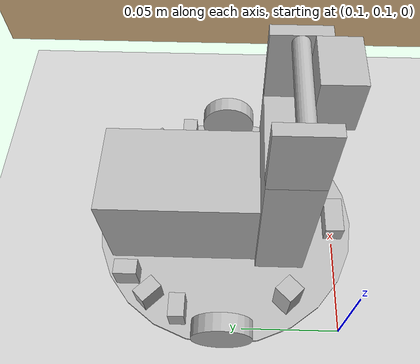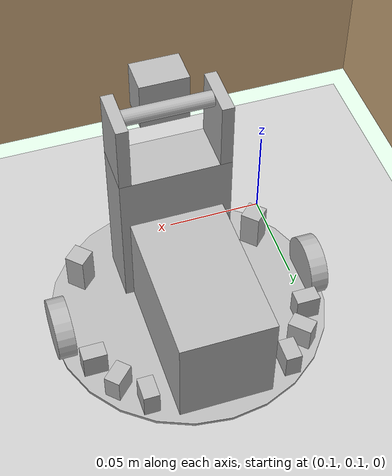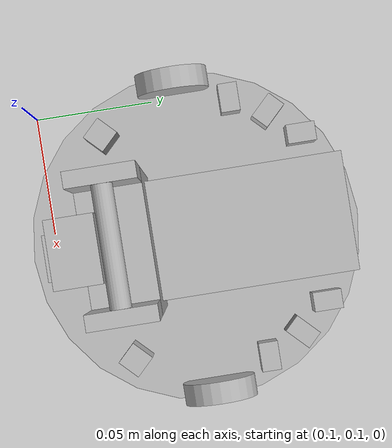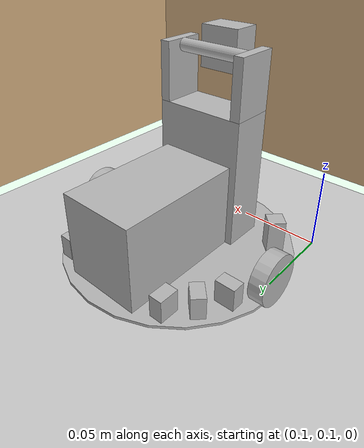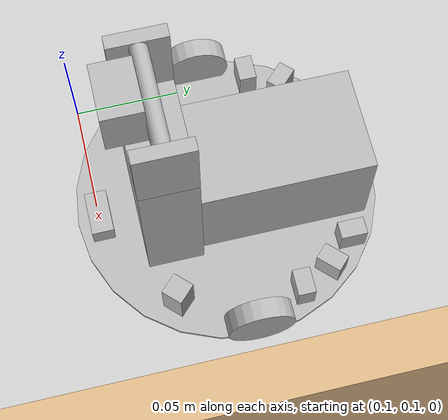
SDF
<?xml version="1.0" ?>
<sdf version="1.4">
  <world name="default">
    <scene>
      <ambient>0.5 0.5 0.5 1.0</ambient>
      <shadows>0</shadows>
    </scene>
    <include>
      <uri>model://ground_plane</uri>
    </include>
    <include>
      <uri>model://sun</uri>
    </include>
    <include>
      <uri>model://iti0201_robot</uri>
      <name>iti0201_robot</name>
      <pose>0.16 0.16 0 0 0 -1.57</pose> <!-- this is the robot's starting position, if you know where it should be, you can change this -->
    </include>

    <include>
      <uri>model://labyrinth5</uri>
      <name>labyrinth5</name>
      <pose>0 0 0 0 0 0</pose>
    </include>

  </world>
</sdf>

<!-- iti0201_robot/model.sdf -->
<sdf version='1.4'>
  	<model name="iti0201_robot">
  		<static>false</static>

      <!-- LINK 1: Chassis, connect wheels and base to this. -->
      <link name="chassis">
        <pose>0 0 0.0152 0 0 0</pose>
      </link>

      <joint type="fixed" name="chassis_to_base">
        <pose>0 0 0 0 0 0</pose>
        <child>base</child>
        <parent>chassis</parent>
        <axis>
          <xyz>0 0 0</xyz>
        </axis>
      </joint>

      <!-- LINK 2: Base, contains caster wheels, base, brainbox and base for camera stand. -->
  		<link name='base'>
        <pose>0 0 .006 0 0 0</pose>

          <inertial>
            <mass>50</mass>
          </inertial>

          <collision name='base_collision'>
            <geometry>
              <cylinder>
                <radius>.069912</radius>
                <length>0.001591</length>
              </cylinder>
            </geometry>
          </collision>

          <visual name='base_visual'>
            <geometry>
              <cylinder>
                <radius>.069912</radius>
                <length>0.001591</length>
              </cylinder>
            </geometry>
          </visual>

          <collision name="brainbox_collision">
            <pose>-0.022 0 0.02641535 0 0 0</pose>
            <geometry>
              <box>
                <size>.077304 .0468221 .0512397</size>
              </box>
            </geometry>
          </collision>

          <visual name="brainbox_visual">
            <pose>-0.022 0 0.02641535 0 0 0</pose>
            <geometry>
              <box>
                <size>.077304 .0468221 .0512397</size>
              </box>
            </geometry>
          </visual>

          <collision name="camera_stand_collision">
            <pose>0.02940475 0 0.0402758 0 0 0</pose>
            <geometry>
              <box>
                <size>.0255021 .0553499 .0789606</size>
              </box>
            </geometry>
          </collision>

          <visual name="camera_stand_visual">
            <pose>0.02940475 0 0.0402758 0 0 0</pose>
            <geometry>
              <box>
                <size>.0255021 .0553499 .0789606</size>
              </box>
            </geometry>
          </visual>

          <collision name="camera_stand_right_wall_collision">
          <pose>0.02940475 -0.02467495 0.0970561 0 0 0</pose>
            <geometry>
              <box>
                <size>.0255021 .006 .0346</size>
              </box>
            </geometry>
          </collision>

          <visual name="camera_stand_right_wall_visual">
          <pose>0.02940475 -0.02467495 0.0970561 0 0 0</pose>
            <geometry>
              <box>
                <size>.0255021 .006 .0346</size>
              </box>
            </geometry>
          </visual>

          <collision name="camera_stand_left_wall_collision">
          <pose>0.02940475 0.02467495 0.0970561 0 0 0</pose>
            <geometry>
              <box>
                <size>.0255021 .006 .0346</size>
              </box>
            </geometry>
          </collision>

          <visual name="camera_stand_left_wall_visual">
          <pose>0.02940475 0.02467495 0.0970561 0 0 0</pose>
            <geometry>
              <box>
                <size>.0255021 .006 .0346</size>
              </box>
            </geometry>
          </visual>

          <collision name='front_caster_collision'>
            <pose>0.035 0 -0.001 0 0 0</pose>
            <geometry>
                <sphere>
                <radius>.004648</radius>
              </sphere>
            </geometry>

            <surface>
              <friction>
                <ode>
                  <mu>0</mu>
                  <mu2>0</mu2>
                  <slip1>1.0</slip1>
                  <slip2>1.0</slip2>
                </ode>
              </friction>
            </surface>
          </collision>

          <visual name='front_caster_visual'>
            <pose>0.035 0 -0.001 0 0 0</pose>
            <geometry>
              <sphere>
                <radius>.004648</radius>
              </sphere>
            </geometry>
          </visual>

          <collision name='rear_caster_collision'>
            <pose>-0.035 0 -0.001 0 0 0</pose>
            <geometry>
                <sphere>
                <radius>.004648</radius>
              </sphere>
            </geometry>

            <surface>
              <friction>
                <ode>
                  <mu>0</mu>
                  <mu2>0</mu2>
                  <slip1>1.0</slip1>
                  <slip2>1.0</slip2>
                </ode>
              </friction>
            </surface>
          </collision>

          <visual name='rear_caster_visual'>
            <pose>-0.035 0 -0.001 0 0 0</pose>
            <geometry>
              <sphere>
                <radius>.004648</radius>
              </sphere>
            </geometry>
          </visual>
      </link>

      <!-- LINKS 3-11: Infrared sensors. -->
      <link name="front_right_45deg_ir">
        <pose>0.0326151 -0.0470558 0.0167955 0 0 0.78535</pose>
        <collision name="collision">
          <geometry>
            <box>
              <size>.01 .01 .02</size>
            </box>
          </geometry>
        </collision>
        <visual name="visual">
          <geometry>
            <box>
              <size>.01 .01 .02</size>
            </box>
          </geometry>
        </visual>
      </link>

      <joint type="fixed" name="front_right_45deg_ir_to_base">
        <pose>0 0 0 0 0 0</pose>
        <child>front_right_45deg_ir</child>
        <parent>base</parent>
      </joint>

      <link name="front_middle_ir">
        <pose>0.059312 0 0.0117955 0 0 0</pose>
        <collision name="collision">
          <geometry>
            <box>
              <size>.01 .02 .01</size>
            </box>
          </geometry>
        </collision>
        <visual name="visual">
          <geometry>
            <box>
              <size>.01 .02 .01</size>
            </box>
          </geometry>
        </visual>
      </link>

      <joint type="fixed" name="front_middle_ir_to_base">
        <pose>0 0 0 0 0 0</pose>
        <child>front_middle_ir</child>
        <parent>base</parent>
      </joint>

      <link name="front_left_45deg_ir">
        <pose>0.0326151 0.0470558 0.0167955 0 0 0.78535</pose>
        <collision name="collision">
          <geometry>
            <box>
              <size>.01 .01 .02</size>
            </box>
          </geometry>
        </collision>
        <visual name="visual">
          <geometry>
            <box>
              <size>.01 .01 .02</size>
            </box>
          </geometry>
        </visual>
      </link>

      <joint type="fixed" name="front_left_45deg_ir_to_base">
        <pose>0 0 0 0 0 0</pose>
        <child>front_left_45deg_ir</child>
        <parent>base</parent>
      </joint>

      <link name="rear_right_90deg_ir">
        <pose>-0.0225688 -0.054749 0.014341 0 0 0</pose>
        <collision name="collision">
          <geometry>
            <box>
              <size>.008 .012 .0135</size>
            </box>
          </geometry>
        </collision>
        <visual name="visual">
          <geometry>
            <box>
              <size>.008 .012 .0135</size>
            </box>
          </geometry>
        </visual>
      </link>

      <joint type="fixed" name="rear_right_90deg_ir_to_base">
        <pose>0 0 0 0 0 0</pose>
        <child>rear_right_90deg_ir</child>
        <parent>base</parent>
      </joint>

      <link name="rear_right_45deg_ir">
        <pose>-0.037845 -0.046812 0.014341 0 0 -0.78535</pose>
        <collision name="collision">
          <geometry>
            <box>
              <size>.008 .012 .0135</size>
            </box>
          </geometry>
        </collision>
        <visual name="visual">
          <geometry>
            <box>
              <size>.008 .012 .0135</size>
            </box>
          </geometry>
        </visual>
      </link>

      <joint type="fixed" name="rear_right_45deg_ir_to_base">
        <pose>0 0 0 0 0 0</pose>
        <child>rear_right_45deg_ir</child>
        <parent>base</parent>
      </joint>

      <link name="rear_right_straight_ir">
        <pose>-0.0501109 -0.035473 0.014341 0 0 1.5707</pose>
        <collision name="collision">
          <geometry>
            <box>
              <size>.008 .012 .0135</size>
            </box>
          </geometry>
        </collision>
        <visual name="visual">
          <geometry>
            <box>
              <size>.008 .012 .0135</size>
            </box>
          </geometry>
        </visual>
      </link>

      <joint type="fixed" name="rear_right_straight_ir_to_base">
        <pose>0 0 0 0 0 0</pose>
        <child>rear_right_straight_ir</child>
        <parent>base</parent>
      </joint>

      <link name="rear_left_90deg_ir">
        <pose>-0.0225688 0.054749 0.014341 0 0 0</pose>
        <collision name="collision">
          <geometry>
            <box>
              <size>.008 .012 .0135</size>
            </box>
          </geometry>
        </collision>
        <visual name="visual">
          <geometry>
            <box>
              <size>.008 .012 .0135</size>
            </box>
          </geometry>
        </visual>
      </link>

      <joint type="fixed" name="rear_left_90deg_ir_to_base">
        <pose>0 0 0 0 0 0</pose>
        <child>rear_left_90deg_ir</child>
        <parent>base</parent>
      </joint>

      <link name="rear_left_45deg_ir">
        <pose>-0.037845 0.046812 0.014341 0 0 0.78535</pose>
        <collision name="collision">
          <geometry>
            <box>
              <size>.008 .012 .0135</size>
            </box>
          </geometry>
        </collision>
        <visual name="visual">
          <geometry>
            <box>
              <size>.008 .012 .0135</size>
            </box>
          </geometry>
        </visual>
      </link>

      <joint type="fixed" name="rear_left_45deg_ir_to_base">
        <pose>0 0 0 0 0 0</pose>
        <child>rear_left_45deg_ir</child>
        <parent>base</parent>
      </joint>

      <link name="rear_left_straight_ir">
        <pose>-0.0501109 0.035473 0.014341 0 0 1.5707</pose>
        <collision name="collision">
          <geometry>
            <box>
              <size>.008 .012 .0135</size>
            </box>
          </geometry>
        </collision>
        <visual name="visual">
          <geometry>
            <box>
              <size>.008 .012 .0135</size>
            </box>
          </geometry>
        </visual>
      </link>

      <joint type="fixed" name="rear_left_straight_ir_to_base">
        <pose>0 0 0 0 0 0</pose>
        <child>rear_left_straight_ir</child>
        <parent>base</parent>
      </joint>

      <!-- LINKS 12-17: Line following sensors. -->
      <link name="right_side_first_line_sensor_from_middle">
        <pose>-0.06289935 -0.005 0.0044545 0 0 0</pose>
        <collision name="collision">
          <geometry>
            <box>
              <size>.0025 .0035 .0015</size>
            </box>
          </geometry>
        </collision>
        <visual name="visual">
          <geometry>
            <box>
              <size>.0025 .0035 .0015</size>
            </box>
          </geometry>
        </visual>
      </link>

      <joint type="fixed" name="right_side_first_line_sensor_from_middle_to_base">
        <pose>0 0 0 0 0 0</pose>
        <child>right_side_first_line_sensor_from_middle</child>
        <parent>base</parent>
      </joint>

      <link name="left_side_first_line_sensor_from_middle">
        <pose>-0.06289935 0.005 0.0044545 0 0 0</pose>
        <collision name="collision">
          <geometry>
            <box>
              <size>.0025 .0035 .0015</size>
            </box>
          </geometry>
        </collision>
        <visual name="visual">
          <geometry>
            <box>
              <size>.0025 .0035 .0015</size>
            </box>
          </geometry>
        </visual>
      </link>

      <joint type="fixed" name="left_side_first_line_sensor_from_middle_to_base">
        <pose>0 0 0 0 0 0</pose>
        <child>left_side_first_line_sensor_from_middle</child>
        <parent>base</parent>
      </joint>

      <link name="right_side_second_line_sensor_from_middle">
        <pose>-0.06289935 -0.015 0.0044545 0 0 0</pose>
        <collision name="collision">
          <geometry>
            <box>
              <size>.0025 .0035 .0015</size>
            </box>
          </geometry>
        </collision>
        <visual name="visual">
          <geometry>
            <box>
              <size>.0025 .0035 .0015</size>
            </box>
          </geometry>
        </visual>
      </link>

      <joint type="fixed" name="right_side_second_line_sensor_from_middle_to_base">
        <pose>0 0 0 0 0 0</pose>
        <child>right_side_second_line_sensor_from_middle</child>
        <parent>base</parent>
      </joint>

      <link name="left_side_second_line_sensor_from_middle">
        <pose>-0.06289935 0.015 0.0044545 0 0 0</pose>
        <collision name="collision">
          <geometry>
            <box>
              <size>.0025 .0035 .0015</size>
            </box>
          </geometry>
        </collision>
        <visual name="visual">
          <geometry>
            <box>
              <size>.0025 .0035 .0015</size>
            </box>
          </geometry>
        </visual>
      </link>

      <joint type="fixed" name="left_side_second_line_sensor_from_middle_to_base">
        <pose>0 0 0 0 0 0</pose>
        <child>left_side_second_line_sensor_from_middle</child>
        <parent>base</parent>
      </joint>

      <link name="right_side_third_line_sensor_from_middle">
        <pose>-0.05410292 -0.035 0.0044545 0 0 0</pose>
        <collision name="collision">
          <geometry>
            <box>
              <size>.0025 .0035 .0015</size>
            </box>
          </geometry>
        </collision>
        <visual name="visual">
          <geometry>
            <box>
              <size>.0025 .0035 .0015</size>
            </box>
          </geometry>
        </visual>
      </link>

      <joint type="fixed" name="right_side_third_line_sensor_from_middle_to_base">
        <pose>0 0 0 0 0 0</pose>
        <child>right_side_third_line_sensor_from_middle</child>
        <parent>base</parent>
      </joint>

      <link name="left_side_third_line_sensor_from_middle">
        <pose>-0.05410292 0.035 0.0044545 0 0 0</pose>
        <collision name="collision">
          <geometry>
            <box>
              <size>.0025 .0035 .0015</size>
            </box>
          </geometry>
        </collision>
        <visual name="visual">
          <geometry>
            <box>
              <size>.0025 .0035 .0015</size>
            </box>
          </geometry>
        </visual>
      </link>

      <joint type="fixed" name="left_side_third_line_sensor_from_middle_to_base">
        <pose>0 0 0 0 0 0</pose>
        <child>left_side_third_line_sensor_from_middle</child>
        <parent>base</parent>
      </joint>

      <!-- LINKS 18-19: Camera. -->
      <link name="camera_stand_pole">
        <pose>0.02940475 0 0.1165341 0 1.5707 1.5707</pose>
        <collision name="collision">
          <geometry>
            <cylinder>
              <radius>.003822</radius>
              <length>.0433499</length>
            </cylinder>
          </geometry>
        </collision>
        <visual name="visual">
          <geometry>
            <cylinder>
              <radius>.003822</radius>
              <length>.0433499</length>
            </cylinder>
          </geometry>
        </visual>
      </link>

      <joint type="fixed" name="camera_stand_pole_to_base">
        <pose>0 0 0 0 0 0</pose>
        <child>camera_stand_pole</child>
        <parent>base</parent>
      </joint>

      <link name="camera">
        <pose>0.04140475 0 0.1168561 0 1.5707 0</pose>
        <collision name="collision">
          <geometry>
            <box>
              <size>.024 .024 .017</size>
            </box>
          </geometry>
        </collision>
        <visual name="visual">
          <geometry>
            <box>
              <size>.024 .024 .017</size>
            </box>
          </geometry>
        </visual>
      </link>

      <joint type="fixed" name="camera">
        <pose>0 0 0 0 0 0</pose>
        <child>camera</child>
        <parent>camera_stand_pole</parent>
      </joint>

      <!-- LINKS 20-21: Wheels. -->
     	<link name="right_wheel">
        <pose>0 -0.0655005 0.0152 0 1.5707 1.5707</pose>
        <collision name="collision">
          <geometry>
            <cylinder>
              <radius>.0152</radius>
              <length>.009</length>
            </cylinder>
          </geometry>

          <surface>
            <friction>
               <ode>
                  <!-- wheel friction coefficient -->
                  <mu>0.6</mu>
                  <!-- floor friction coefficient -->
                  <mu2>0.6</mu2>
               </ode>
            </friction>
          </surface>
        </collision>

        <inertial>
          <!-- don't know the real mass -->
          <mass>2</mass>
            <inertia>
              <!-- https://en.wikipedia.org/wiki/List_of_moments_of_inertia -->
              <ixx>0.00012902</ixx>
              <iyy>0.00012902</iyy>
              <izz>0.00023104</izz>
            </inertia>
        </inertial>

        <visual name="visual">
          <geometry>
            <cylinder>
              <radius>.0152</radius>
              <length>.009</length>
            </cylinder>
          </geometry>
        </visual>
    	</link>

      <joint type="revolute" name="right_wheel_hinge">
        <pose>0 0 -0.03 0 0 0</pose>
        <child>right_wheel</child>
        <parent>chassis</parent>
        <axis>
          <xyz>0 1 0</xyz>
        </axis>
      </joint>

    	<link name="left_wheel">
        <pose>0 0.0655005 0.0152 0 1.5707 1.5707</pose>
        <collision name="collision">
          <geometry>
            <cylinder>
              <radius>.0152</radius>
              <length>.009</length>
            </cylinder>
          </geometry>

          <surface>
            <friction>
               <ode>
                  <!-- wheel friction coefficient -->
                  <mu>0.6</mu>
                  <!-- floor friction coefficient -->
                  <mu2>0.6</mu2>
               </ode>
            </friction>
          </surface>
        </collision>

        <inertial>
          <!-- don't know the real mass -->
          <mass>2</mass>
            <inertia>
              <!-- https://en.wikipedia.org/wiki/List_of_moments_of_inertia -->
              <ixx>0.00012902</ixx>
              <iyy>0.00012902</iyy>
              <izz>0.00023104</izz>
            </inertia>
        </inertial>

        <visual name="visual">
          <geometry>
            <cylinder>
              <radius>.0152</radius>
              <length>.009</length>
            </cylinder>
          </geometry>
        </visual>
      </link>

      <joint type="revolute" name="left_wheel_hinge">
        <pose>0 0 0.03 0 0 0</pose>
        <child>left_wheel</child>
        <parent>chassis</parent>
        <axis>
          <xyz>0 1 0</xyz>
        </axis>
      </joint>
      <plugin name="wheel_plugin" filename="libwheel_plugin.so"/>
  </model>
</sdf>

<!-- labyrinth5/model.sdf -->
<sdf version="1.6">
  <model name="labyrinth5">
      <static>true</static>
      <link name="body">
        <pose>0 0 0 0 0 0</pose>

        <inertial>
          <mass>5</mass>
          <pose>0.6025 0.935 0.15 0 0 0</pose>
          <inertia>
            <ixx>0.01</ixx>
            <iyy>0.01</iyy>
            <izz>0.01</izz>
          </inertia>
      	</inertial>

        <visual name="vis">
          <geometry>
            <mesh>
         	<uri>model://labyrinth5/M2_4.dae</uri>
          </mesh>
          </geometry>
        </visual>

        <collision name="col">
          <geometry>
            <mesh>
             <uri>model://labyrinth5/M2_4.dae</uri>
            </mesh>
          </geometry>
        </collision>
      </link>
  </model>
</sdf>
